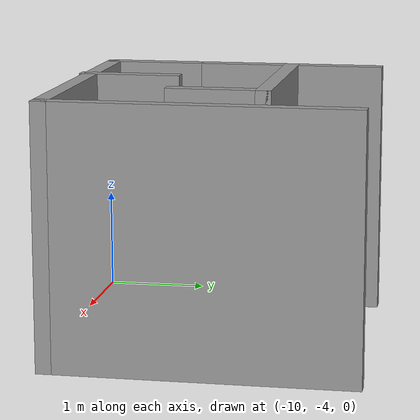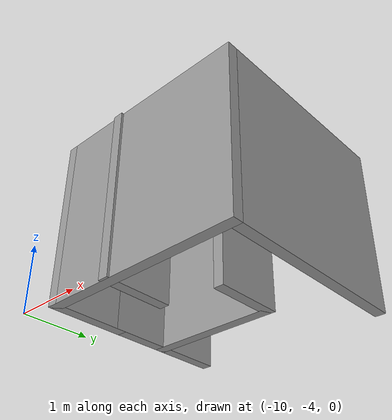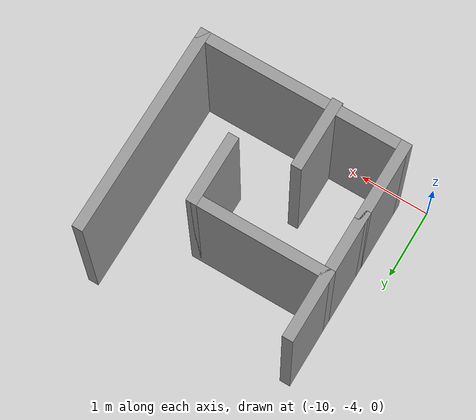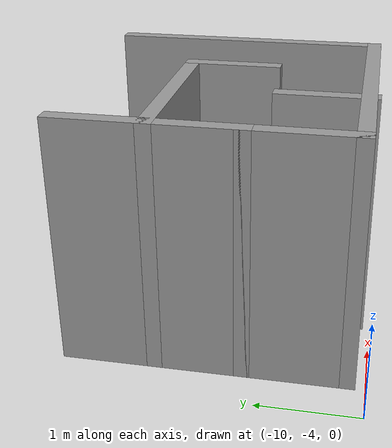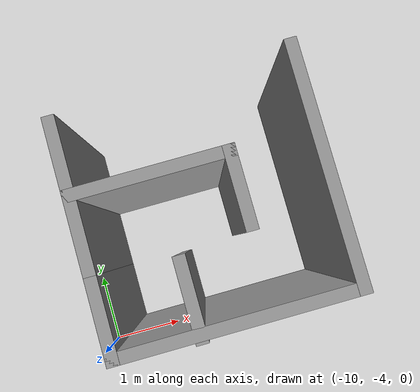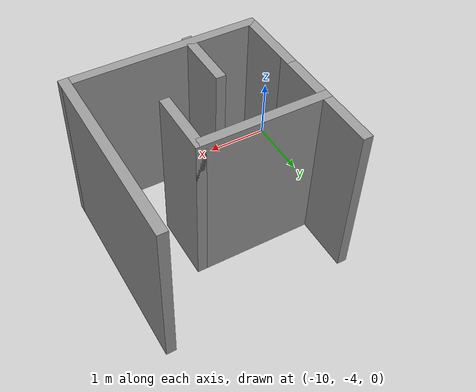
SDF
<?xml version='1.0'?>
<sdf version='1.6'>
  <model name='bug_trap1'>
    <pose frame=''>-8.1194 -2.43323 0 0 -0 0</pose>
    <link name='Wall_17'>
      <collision name='Wall_17_Collision'>
        <geometry>
          <box>
            <size>2.97355 0.15 2.5</size>
          </box>
        </geometry>
        <pose frame=''>0 0 1.25 0 -0 0</pose>
      </collision>
      <visual name='Wall_17_Visual'>
        <pose frame=''>0 0 1.25 0 -0 0</pose>
        <geometry>
          <box>
            <size>2.97355 0.15 2.5</size>
          </box>
        </geometry>
        <material>
          <script>
            <uri>file://media/materials/scripts/gazebo.material</uri>
            <name>Gazebo/Grey</name>
          </script>
          <ambient>1 1 1 1</ambient>
        </material>
        <meta>
          <layer>0</layer>
        </meta>
      </visual>
      <pose frame=''>1.425 0.016525 0 0 0 -1.5708</pose>
    </link>
    <link name='Wall_18'>
      <collision name='Wall_18_Collision'>
        <geometry>
          <box>
            <size>3 0.15 2.5</size>
          </box>
        </geometry>
        <pose frame=''>0 0 1.25 0 -0 0</pose>
      </collision>
      <visual name='Wall_18_Visual'>
        <pose frame=''>0 0 1.25 0 -0 0</pose>
        <geometry>
          <box>
            <size>3 0.15 2.5</size>
          </box>
        </geometry>
        <material>
          <script>
            <uri>file://media/materials/scripts/gazebo.material</uri>
            <name>Gazebo/Grey</name>
          </script>
          <ambient>1 1 1 1</ambient>
        </material>
        <meta>
          <layer>0</layer>
        </meta>
      </visual>
      <pose frame=''>0 -1.39525 0 0 -0 3.14159</pose>
    </link>
    <link name='Wall_20'>
      <collision name='Wall_20_Collision'>
        <geometry>
          <box>
            <size>2 0.15 2.5</size>
          </box>
        </geometry>
        <pose frame=''>0 0 1.25 0 -0 0</pose>
      </collision>
      <visual name='Wall_20_Visual'>
        <pose frame=''>0 0 1.25 0 -0 0</pose>
        <geometry>
          <box>
            <size>2 0.15 2.5</size>
          </box>
        </geometry>
        <material>
          <script>
            <uri>file://media/materials/scripts/gazebo.material</uri>
            <name>Gazebo/Grey</name>
          </script>
          <ambient>1 1 1 1</ambient>
        </material>
        <meta>
          <layer>0</layer>
        </meta>
      </visual>
      <pose frame=''>-0.5 0.45475 0 0 -0 0</pose>
    </link>
    <link name='Wall_21'>
      <collision name='Wall_21_Collision'>
        <geometry>
          <box>
            <size>1 0.15 2.5</size>
          </box>
        </geometry>
        <pose frame=''>0 0 1.25 0 -0 0</pose>
      </collision>
      <visual name='Wall_21_Visual'>
        <pose frame=''>0 0 1.25 0 -0 0</pose>
        <geometry>
          <box>
            <size>1 0.15 2.5</size>
          </box>
        </geometry>
        <material>
          <script>
            <uri>file://media/materials/scripts/gazebo.material</uri>
            <name>Gazebo/Grey</name>
          </script>
          <ambient>1 1 1 1</ambient>
        </material>
        <meta>
          <layer>0</layer>
        </meta>
      </visual>
      <pose frame=''>0.425 0.02975 0 0 0 -1.5708</pose>
    </link>
    <link name='Wall_25'>
      <collision name='Wall_25_Collision'>
        <geometry>
          <box>
            <size>1 0.15 2.5</size>
          </box>
        </geometry>
        <pose frame=''>0 0 1.25 0 -0 0</pose>
      </collision>
      <visual name='Wall_25_Visual'>
        <pose frame=''>0 0 1.25 0 -0 0</pose>
        <geometry>
          <box>
            <size>1 0.15 2.5</size>
          </box>
        </geometry>
        <material>
          <script>
            <uri>file://media/materials/scripts/gazebo.material</uri>
            <name>Gazebo/Grey</name>
          </script>
          <ambient>1 1 1 1</ambient>
        </material>
        <meta>
          <layer>0</layer>
        </meta>
      </visual>
      <pose frame=''>-1.425 0.02975 0 0 0 -1.5708</pose>
    </link>
    <link name='Wall_27'>
      <collision name='Wall_27_Collision'>
        <geometry>
          <box>
            <size>1 0.15 2.5</size>
          </box>
        </geometry>
        <pose frame=''>0 0 1.25 0 -0 0</pose>
      </collision>
      <visual name='Wall_27_Visual'>
        <pose frame=''>0 0 1.25 0 -0 0</pose>
        <geometry>
          <box>
            <size>1 0.15 2.5</size>
          </box>
        </geometry>
        <material>
          <script>
            <uri>file://media/materials/scripts/gazebo.material</uri>
            <name>Gazebo/Grey</name>
          </script>
          <ambient>1 1 1 1</ambient>
        </material>
        <meta>
          <layer>0</layer>
        </meta>
      </visual>
      <pose frame=''>-0.433125 -1.0033 0 0 -0 1.5708</pose>
    </link>
    <link name='Wall_30'>
      <collision name='Wall_30_Collision'>
        <geometry>
          <box>
            <size>1.15 0.15 2.5</size>
          </box>
        </geometry>
        <pose frame=''>0 0 1.25 0 -0 0</pose>
      </collision>
      <visual name='Wall_30_Visual'>
        <pose frame=''>0 0 1.25 0 -0 0</pose>
        <geometry>
          <box>
            <size>1.15 0.15 2.5</size>
          </box>
        </geometry>
        <material>
          <script>
            <uri>file://media/materials/scripts/gazebo.material</uri>
            <name>Gazebo/Grey</name>
          </script>
          <ambient>1 1 1 1</ambient>
        </material>
        <meta>
          <layer>0</layer>
        </meta>
      </visual>
      <pose frame=''>-1.425 -0.89525 0 0 -0 1.5708</pose>
    </link>
    <link name='Wall_34'>
      <collision name='Wall_34_Collision'>
        <geometry>
          <box>
            <size>1 0.15 2.5</size>
          </box>
        </geometry>
        <pose frame=''>0 0 1.25 0 -0 0</pose>
      </collision>
      <visual name='Wall_34_Visual'>
        <pose frame=''>0 0 1.25 0 -0 0</pose>
        <geometry>
          <box>
            <size>1 0.15 2.5</size>
          </box>
        </geometry>
        <material>
          <script>
            <uri>file://media/materials/scripts/gazebo.material</uri>
            <name>Gazebo/Grey</name>
          </script>
          <ambient>1 1 1 1</ambient>
        </material>
        <meta>
          <layer>0</layer>
        </meta>
      </visual>
      <pose frame=''>-1.425 0.87975 0 0 -0 1.5708</pose>
    </link>
    <static>1</static>
  </model>
</sdf>
